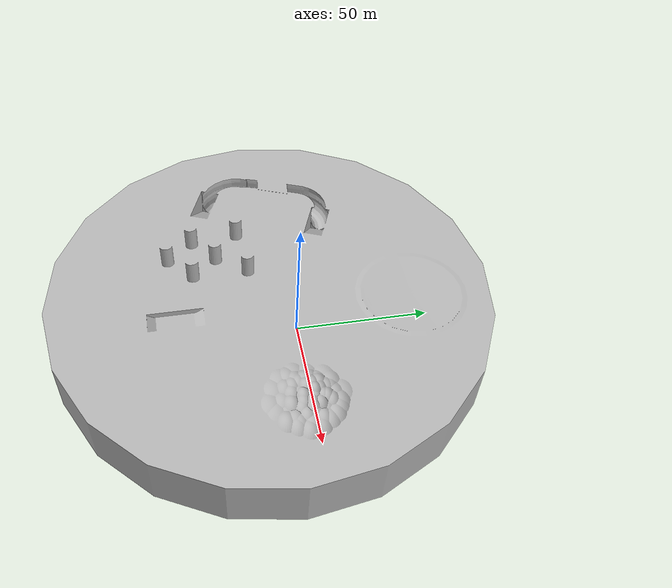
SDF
<?xml version="1.0" ?>
<sdf version="1.6">
  <world name="otomasyon">
    <include>
      <uri>model://otomasyon</uri>
    </include>
  </world>
</sdf>

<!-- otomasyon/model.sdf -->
<sdf version="1.6">
  <model name="otomasyon_model">
    <static>true</static>
    <link name="body">
      <visual name="visual">
        <geometry>
          <mesh>
            <uri>model://otomasyon/meshes/model.stl</uri>
          </mesh>
        </geometry>
      </visual>
      <collision name="collision">
        <geometry>
          <mesh>
            <uri>model://otomasyon/meshes/model.stl</uri>
          </mesh>
        </geometry>
      </collision>
    </link>
  </model>
</sdf>
